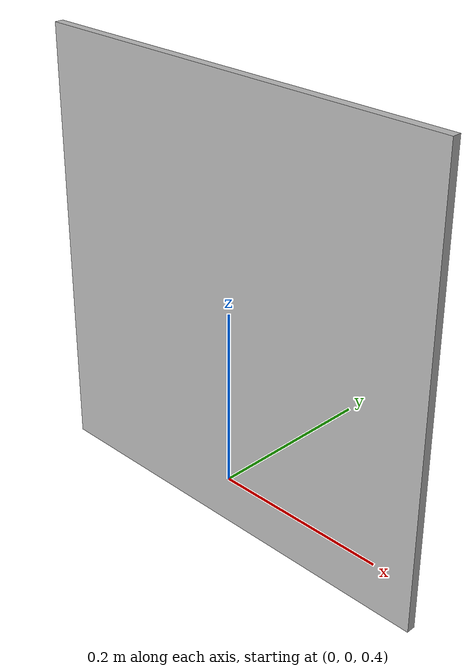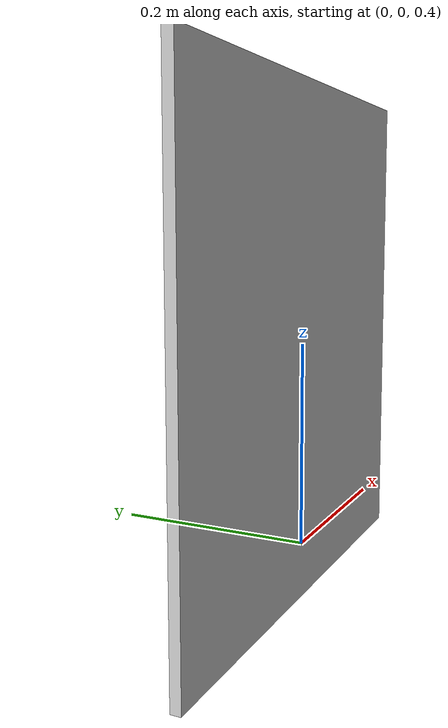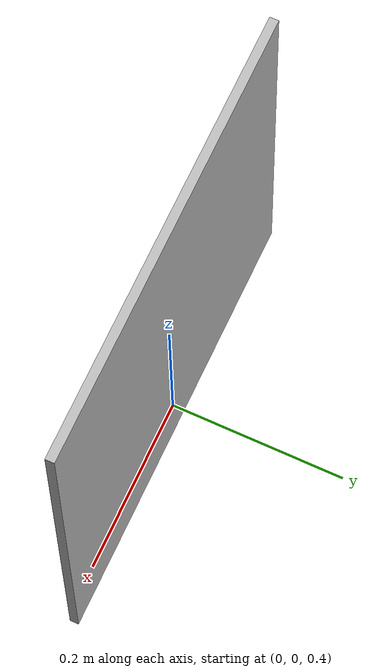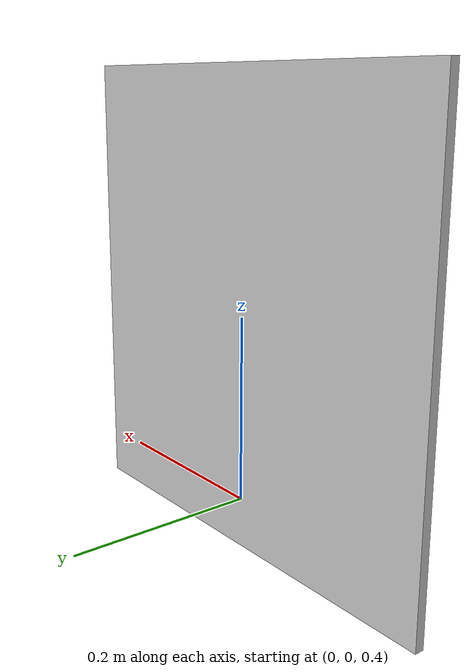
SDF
<?xml version='1.0'?>
<sdf version='1.4'>
  <model name="mark_ar_track1">
    <static>true</static>
    <link name='link'>
      <pose>0 0 0.6 0 0 0</pose>
      <inertial>
        <mass>0.390</mass>
        <inertia>
          <ixx>0.00058</ixx>
          <ixy>0</ixy>
          <ixz>0</ixz>
          <iyy>0.00058</iyy>
          <iyz>0</iyz>
          <izz>0.00019</izz>
        </inertia>
      </inertial>

      <collision name='collision'>
        <geometry>
                <box>
                  <size>0.5 0.01 0.5</size>
                </box>
        </geometry>
      </collision>

      <visual name='visual'>
        <geometry>
                <box>
                  <size>0.5 0.01 0.5</size>
                </box>
        </geometry>

        <material>
          <script>
            <uri>model://mark_ar_track1/materials/scripts</uri>
            <uri>model://mark_ar_track1/materials/textures</uri>
            <name>Mark_ar_track1/Diffuse</name>
          </script>
        </material>
      </visual>
    </link>
  </model>
</sdf>
